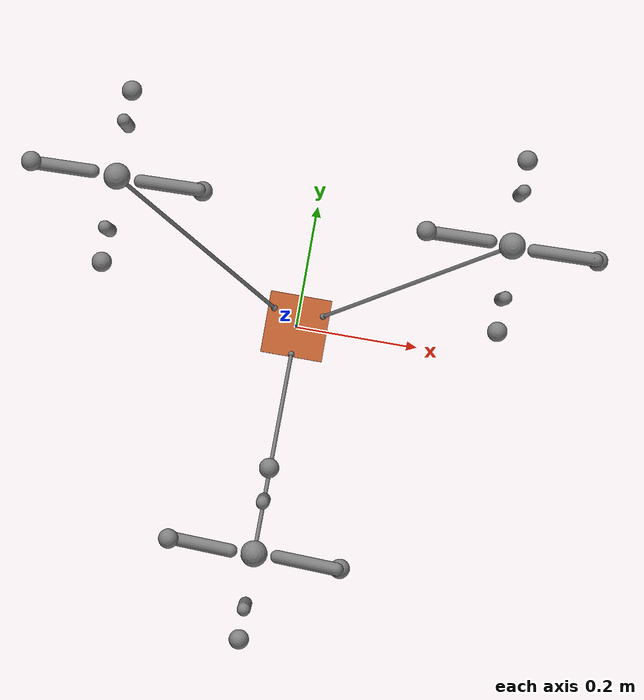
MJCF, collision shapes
<mujoco model="3cf_carry_box">

  <compiler inertiafromgeom="false" meshdir="assets" autolimits="true"/>

  <option timestep="0.005" iterations="5" ls_iterations="8" integrator="implicitfast">
    <flag eulerdamp="disable"/>
  </option>

  <!-- Custom metadata for MJX -->

  <default>
    <default class="cf2">
      <!-- Visual geoms: no collision -->
      <default class="visual">
        <geom group="2" type="mesh" contype="0" conaffinity="0"/>
      </default>
      <!-- Collision geoms for drones -->
      <default class="collision">
        <geom group="3" contype="1" conaffinity="1"/>
      </default>
      <!-- Box collision -->
      <default class="box_collision">
        <geom group="4" contype="2" conaffinity="3"/>
      </default>
      <!-- Cable constraints -->
      <default class="cable">
        <tendon damping="0.5" stiffness="1" range="0 0.5"/>
      </default>
      <site group="5"/>
    </default>
  </default>

  <asset>
    <!-- Crazyflie materials -->
    <material name="propeller_plastic"    rgba="0.792 0.820 0.933 1"/>
    <material name="medium_gloss_plastic" rgba="0.109 0.184 0.000 1"/>
    <material name="polished_gold"        rgba="0.969 0.878 0.600 1"/>
    <material name="polished_plastic"     rgba="0.631 0.659 0.678 1"/>
    <material name="burnished_chrome"     rgba="0.898 0.898 0.898 1"/>
    <material name="body_frame_plastic"   rgba="0.102 0.102 0.102 1"/>
    <material name="white"                rgba="1     1     1     1"/>

    <!-- Box material -->
    <material name="box_material"         rgba="0.8 0.4 0.2 1"/>

    <!-- Crazyflie visual meshes -->
    <mesh file="cf2_0.obj"/>
    <mesh file="cf2_1.obj"/>
    <mesh file="cf2_2.obj"/>
    <mesh file="cf2_3.obj"/>
    <mesh file="cf2_4.obj"/>
    <mesh file="cf2_5.obj"/>
    <mesh file="cf2_6.obj"/>
  </asset>

  <worldbody>
    <!-- Ground plane -->

    <!-- Central box to be carried (0.1m x 0.1m x 0.05m, 0.05kg) -->
    <body name="payload_box" pos="0 0 0.05">
      <freejoint/>
      <inertial pos="0 0 0" mass="0.05" diaginertia="4.17e-4 4.17e-4 8.33e-4"/>

      <!-- Box visual and collision -->
      <geom name="box_visual" type="box" size="0.05 0.05 0.025"
            material="box_material" contype="0" conaffinity="0"/>
      <geom name="box_collision" type="box" size="0.05 0.05 0.025"
            class="box_collision"/>

      <!-- Attachment points for cables (on top of box) -->
      <site name="attach_1" pos="0.04  0.023 0.025"/>  <!-- 120° apart -->
      <site name="attach_2" pos="-0.04 0.023 0.025"/>
      <site name="attach_3" pos="0    -0.046 0.025"/>
    </body>

    <!--—— Crazyflie #1 (positioned above and forward-right of box) ——-->
    <body name="cf2_1" pos="0.3 0.17 0.4" childclass="cf2">
      <freejoint/>
      <inertial pos="0 0 0" mass="0.027" diaginertia="2.3951e-5 2.3951e-5 3.2347e-5"/>

      <!-- Visual meshes -->
      <geom mesh="cf2_0" material="propeller_plastic"    class="visual"/>
      <geom mesh="cf2_1" material="medium_gloss_plastic" class="visual"/>
      <geom mesh="cf2_2" material="polished_gold"        class="visual"/>
      <geom mesh="cf2_3" material="polished_plastic"     class="visual"/>
      <geom mesh="cf2_4" material="burnished_chrome"     class="visual"/>
      <geom mesh="cf2_5" material="body_frame_plastic"   class="visual"/>
      <geom mesh="cf2_6" material="white"                class="visual"/>

      <!-- Simplified collision primitives -->
      <geom type="sphere" size="0.02" pos="0 0 0" class="collision"/>
      <geom type="capsule" size="0.01 0.05" pos="0.08  0    0" quat="0 1 0 1.5708" class="collision"/>
      <geom type="capsule" size="0.01 0.05" pos="-0.08 0    0" quat="0 1 0 1.5708" class="collision"/>
      <geom type="capsule" size="0.01 0.05" pos="0    0.08  0" quat="1 0 0 1.5708" class="collision"/>
      <geom type="capsule" size="0.01 0.05" pos="0   -0.08  0" quat="1 0 0 1.5708" class="collision"/>
      <geom type="sphere" size="0.015" pos="0.13  0    0" class="collision"/>
      <geom type="sphere" size="0.015" pos="-0.13 0    0" class="collision"/>
      <geom type="sphere" size="0.015" pos="0    0.13  0" class="collision"/>
      <geom type="sphere" size="0.015" pos="0   -0.13  0" class="collision"/>

      <!-- Sensors and actuation -->
      <site name="imu1"/>
      <site name="actuation1"/>
      <!-- Cable attachment point -->
      <site name="cable_attach_1" pos="0 0 -0.02"/>
    </body>

    <!--—— Crazyflie #2 (positioned above and forward-left of box) ——-->
    <body name="cf2_2" pos="-0.3 0.17 0.4" childclass="cf2">
      <freejoint/>
      <inertial pos="0 0 0" mass="0.027" diaginertia="2.3951e-5 2.3951e-5 3.2347e-5"/>

      <!-- Visual meshes -->
      <geom mesh="cf2_0" material="propeller_plastic"    class="visual"/>
      <geom mesh="cf2_1" material="medium_gloss_plastic" class="visual"/>
      <geom mesh="cf2_2" material="polished_gold"        class="visual"/>
      <geom mesh="cf2_3" material="polished_plastic"     class="visual"/>
      <geom mesh="cf2_4" material="burnished_chrome"     class="visual"/>
      <geom mesh="cf2_5" material="body_frame_plastic"   class="visual"/>
      <geom mesh="cf2_6" material="white"                class="visual"/>

      <!-- Simplified collision primitives -->
      <geom type="sphere" size="0.02" pos="0 0 0" class="collision"/>
      <geom type="capsule" size="0.01 0.05" pos="0.08  0    0" quat="0 1 0 1.5708" class="collision"/>
      <geom type="capsule" size="0.01 0.05" pos="-0.08 0    0" quat="0 1 0 1.5708" class="collision"/>
      <geom type="capsule" size="0.01 0.05" pos="0    0.08  0" quat="1 0 0 1.5708" class="collision"/>
      <geom type="capsule" size="0.01 0.05" pos="0   -0.08  0" quat="1 0 0 1.5708" class="collision"/>
      <geom type="sphere" size="0.015" pos="0.13  0    0" class="collision"/>
      <geom type="sphere" size="0.015" pos="-0.13 0    0" class="collision"/>
      <geom type="sphere" size="0.015" pos="0    0.13  0" class="collision"/>
      <geom type="sphere" size="0.015" pos="0   -0.13  0" class="collision"/>

      <!-- Sensors and actuation -->
      <site name="imu2"/>
      <site name="actuation2"/>
      <!-- Cable attachment point -->
      <site name="cable_attach_2" pos="0 0 -0.02"/>
    </body>

    <!--—— Crazyflie #3 (positioned above and behind box) ——-->
    <body name="cf2_3" pos="0 -0.35 0.4" childclass="cf2">
      <freejoint/>
      <inertial pos="0 0 0" mass="0.027" diaginertia="2.3951e-5 2.3951e-5 3.2347e-5"/>

      <!-- Visual meshes -->
      <geom mesh="cf2_0" material="propeller_plastic"    class="visual"/>
      <geom mesh="cf2_1" material="medium_gloss_plastic" class="visual"/>
      <geom mesh="cf2_2" material="polished_gold"        class="visual"/>
      <geom mesh="cf2_3" material="polished_plastic"     class="visual"/>
      <geom mesh="cf2_4" material="burnished_chrome"     class="visual"/>
      <geom mesh="cf2_5" material="body_frame_plastic"   class="visual"/>
      <geom mesh="cf2_6" material="white"                class="visual"/>

      <!-- Simplified collision primitives -->
      <geom type="sphere" size="0.02" pos="0 0 0" class="collision"/>
      <geom type="capsule" size="0.01 0.05" pos="0.08  0    0" quat="0 1 0 1.5708" class="collision"/>
      <geom type="capsule" size="0.01 0.05" pos="-0.08 0    0" quat="0 1 0 1.5708" class="collision"/>
      <geom type="capsule" size="0.01 0.05" pos="0    0.08  0" quat="1 0 0 1.5708" class="collision"/>
      <geom type="capsule" size="0.01 0.05" pos="0   -0.08  0" quat="1 0 0 1.5708" class="collision"/>
      <geom type="sphere" size="0.015" pos="0.13  0    0" class="collision"/>
      <geom type="sphere" size="0.015" pos="-0.13 0    0" class="collision"/>
      <geom type="sphere" size="0.015" pos="0    0.13  0" class="collision"/>
      <geom type="sphere" size="0.015" pos="0   -0.13  0" class="collision"/>

      <!-- Sensors and actuation -->
      <site name="imu3"/>
      <site name="actuation3"/>
      <!-- Cable attachment point -->
      <site name="cable_attach_3" pos="0 0 -0.02"/>
    </body>
  </worldbody>

  <!-- Cable connections between drones and box -->
  <tendon>
    <!-- Cable from CF1 rope end to box attachment point 1 -->
    <spatial name="cable_1" class="cable">
      <site site="cable_attach_1"/>
      <site site="attach_1"/>
    </spatial>

    <!-- Cable from CF2 to box attachment point 2 -->
    <spatial name="cable_2" class="cable">
      <site site="cable_attach_2"/>
      <site site="attach_2"/>
    </spatial>

    <!-- Cable from CF3 to box attachment point 3 -->
    <spatial name="cable_3" class="cable">
      <site site="cable_attach_3"/>
      <site site="attach_3"/>
    </spatial>
  </tendon>

  <!-- Actuators for all three Crazyflies -->
  <actuator>
    <!-- CF1 actuators -->
    <motor class="cf2" name="cf1_thrust"   ctrlrange="0 0.35"   gear="0 0 1  0  0    0"   site="actuation1"/>
    <motor class="cf2" name="cf1_x_moment" ctrlrange="-1 1"     gear="0 0 0  -0.00001  0  0" site="actuation1"/>
    <motor class="cf2" name="cf1_y_moment" ctrlrange="-1 1"     gear="0 0 0  0  -0.00001  0" site="actuation1"/>
    <motor class="cf2" name="cf1_z_moment" ctrlrange="-1 1"     gear="0 0 0  0   0  -0.00001" site="actuation1"/>

    <!-- CF2 actuators -->
    <motor class="cf2" name="cf2_thrust"   ctrlrange="0 0.35"   gear="0 0 1  0  0    0"   site="actuation2"/>
    <motor class="cf2" name="cf2_x_moment" ctrlrange="-1 1"     gear="0 0 0  -0.00001  0  0" site="actuation2"/>
    <motor class="cf2" name="cf2_y_moment" ctrlrange="-1 1"     gear="0 0 0  0  -0.00001  0" site="actuation2"/>
    <motor class="cf2" name="cf2_z_moment" ctrlrange="-1 1"     gear="0 0 0  0   0  -0.00001" site="actuation2"/>

    <!-- CF3 actuators -->
    <motor class="cf2" name="cf3_thrust"   ctrlrange="0 0.35"   gear="0 0 1  0  0    0"   site="actuation3"/>
    <motor class="cf2" name="cf3_x_moment" ctrlrange="-1 1"     gear="0 0 0  -0.00001  0  0" site="actuation3"/>
    <motor class="cf2" name="cf3_y_moment" ctrlrange="-1 1"     gear="0 0 0  0  -0.00001  0" site="actuation3"/>
    <motor class="cf2" name="cf3_z_moment" ctrlrange="-1 1"     gear="0 0 0  0   0  -0.00001" site="actuation3"/>
  </actuator>

  <!-- Sensors for all three Crazyflies -->
  <sensor>
    <!-- CF1 sensors -->
    <gyro          name="cf1_gyro"    site="imu1"/>
    <accelerometer name="cf1_linacc"  site="imu1"/>
    <framequat     name="cf1_quat"    objtype="site" objname="imu1"/>

    <!-- CF2 sensors -->
    <gyro          name="cf2_gyro"    site="imu2"/>
    <accelerometer name="cf2_linacc"  site="imu2"/>
    <framequat     name="cf2_quat"    objtype="site" objname="imu2"/>

    <!-- CF3 sensors -->
    <gyro          name="cf3_gyro"    site="imu3"/>
    <accelerometer name="cf3_linacc"  site="imu3"/>
    <framequat     name="cf3_quat"    objtype="site" objname="imu3"/>

    <!-- Box sensors -->
    <framequat     name="box_quat"    objtype="body" objname="payload_box"/>
    <framepos      name="box_pos"     objtype="body" objname="payload_box"/>
  </sensor>

  <!-- Initial configuration for cooperative carrying -->

</mujoco>
